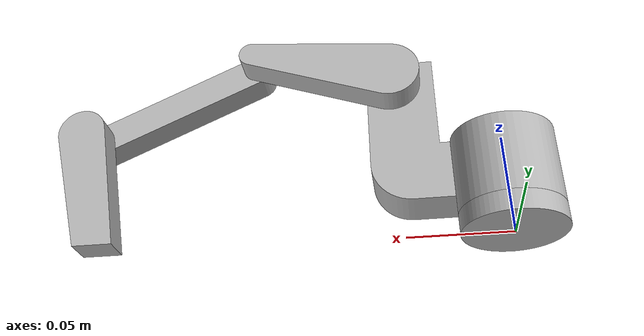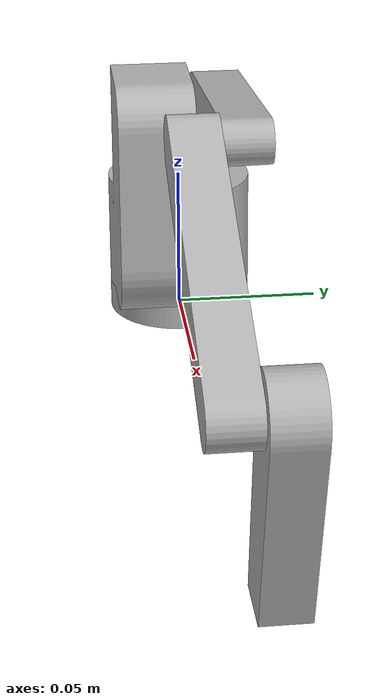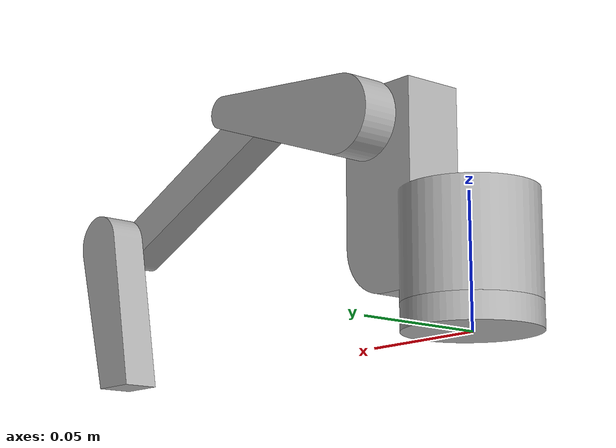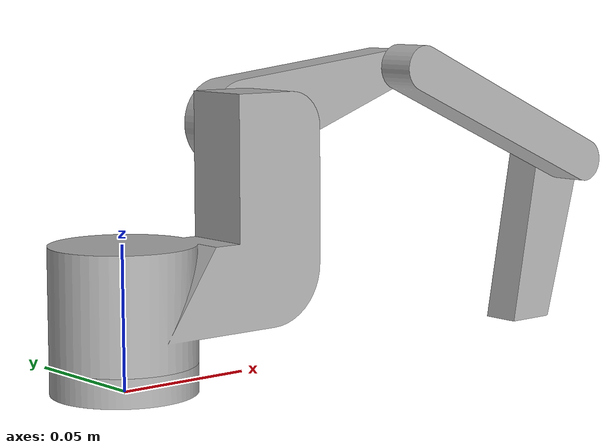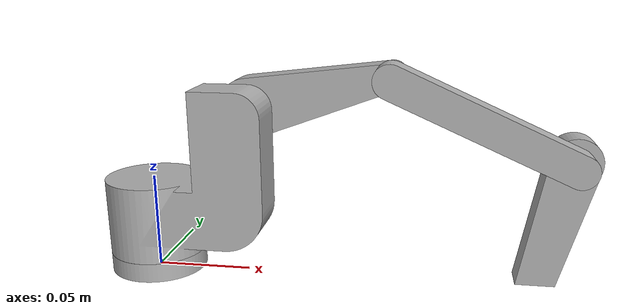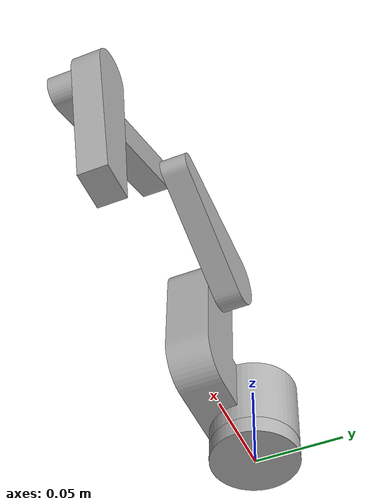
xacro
<?xml version="1.0" ?>
<robot name="gwenLimb" xmlns:xacro="http://www.ros.org/wiki/xacro">

<xacro:include filename="$(find gwenLimb_description)/urdf/materials.xacro" />
<xacro:include filename="$(find gwenLimb_description)/urdf/ros2_control.xacro" />
<xacro:include filename="$(find gwenLimb_description)/urdf/gwenLimb.trans" />
<xacro:include filename="$(find gwenLimb_description)/urdf/gwenLimb.gazebo" />

<link name="world">

</link>
<joint name="world_joint" type="fixed">
  <origin xyz="0.0 0.0 0.0" rpy="0.0 0.0 0.0"/>
  <parent link="world"/>
  <child link="base_link"/>
  <axis xyz="0.0 0.0 0.0"/>
  <limit lower="0.0" upper="0.0" effort="0.0" velocity="0.0"/>
</joint>

<link name="base_link">
  <inertial>
    <origin xyz="3.634199599635309e-18 0.0 0.005021235985580691" rpy="0 0 0"/>
    <mass value="0.1534797504318836"/>
    <inertia ixx="2.5e-05" iyy="2.5e-05" izz="4.8e-05" ixy="0.0" iyz="0.0" ixz="0.0"/>
  </inertial>
  <visual>
    <origin xyz="0 0 0" rpy="0 0 0"/>
    <geometry>
      <mesh filename="file://$(find gwenLimb_description)/meshes/base_link.stl" scale="0.001 0.001 0.001"/>
    </geometry>
    <material name="silver"/>
  </visual>
  <collision>
    <origin xyz="0 0 0" rpy="0 0 0"/>
    <geometry>
      <mesh filename="file://$(find gwenLimb_description)/meshes/base_link.stl" scale="0.001 0.001 0.001"/>
    </geometry>
  </collision>
</link>

<link name="link_1_1">
  <inertial>
    <origin xyz="0.021706913096556698 -0.0062309390414855646 0.03365814496933181" rpy="0 0 0"/>
    <mass value="1.2002468402382447"/>
    <inertia ixx="0.000797" iyy="0.001394" izz="0.00095" ixy="0.000167" iyz="0.000103" ixz="-0.000412"/>
  </inertial>
  <visual>
    <origin xyz="-0.0 -0.0 -0.01" rpy="0 0 0"/>
    <geometry>
      <mesh filename="file://$(find gwenLimb_description)/meshes/link_1_1.stl" scale="0.001 0.001 0.001"/>
    </geometry>
    <material name="silver"/>
  </visual>
  <collision>
    <origin xyz="-0.0 -0.0 -0.01" rpy="0 0 0"/>
    <geometry>
      <mesh filename="file://$(find gwenLimb_description)/meshes/link_1_1.stl" scale="0.001 0.001 0.001"/>
    </geometry>
  </collision>
</link>

<link name="link_2_1">
  <inertial>
    <origin xyz="0.02617228010459379 0.007499999999999999 0.006317447727762132" rpy="0 0 0"/>
    <mass value="0.24927046307112125"/>
    <inertia ixx="2.5e-05" iyy="0.000176" izz="0.00016" ixy="0.0" iyz="0.0" ixz="-3.5e-05"/>
  </inertial>
  <visual>
    <origin xyz="-0.0525 -0.0 -0.0875" rpy="0 0 0"/>
    <geometry>
      <mesh filename="file://$(find gwenLimb_description)/meshes/link_2_1.stl" scale="0.001 0.001 0.001"/>
    </geometry>
    <material name="silver"/>
  </visual>
  <collision>
    <origin xyz="-0.0525 -0.0 -0.0875" rpy="0 0 0"/>
    <geometry>
      <mesh filename="file://$(find gwenLimb_description)/meshes/link_2_1.stl" scale="0.001 0.001 0.001"/>
    </geometry>
  </collision>
</link>

<link name="link_3_1">
  <inertial>
    <origin xyz="0.044615796410054226 -0.007500000000000002 -0.01982914762689375" rpy="0 0 0"/>
    <mass value="0.21793986576617638"/>
    <inertia ixx="4.6e-05" iyy="0.000231" izz="0.000194" ixy="0.0" iyz="-0.0" ixz="8.2e-05"/>
  </inertial>
  <visual>
    <origin xyz="-0.125 -0.0 -0.105" rpy="0 0 0"/>
    <geometry>
      <mesh filename="file://$(find gwenLimb_description)/meshes/link_3_1.stl" scale="0.001 0.001 0.001"/>
    </geometry>
    <material name="silver"/>
  </visual>
  <collision>
    <origin xyz="-0.125 -0.0 -0.105" rpy="0 0 0"/>
    <geometry>
      <mesh filename="file://$(find gwenLimb_description)/meshes/link_3_1.stl" scale="0.001 0.001 0.001"/>
    </geometry>
  </collision>
</link>

<link name="link_4_1">
  <inertial>
    <origin xyz="-0.0060918878128145 0.007499999999999999 -0.0258589168833933" rpy="0 0 0"/>
    <mass value="0.20504652335686618"/>
    <inertia ixx="9.9e-05" iyy="0.000109" izz="1.7e-05" ixy="-0.0" iyz="-0.0" ixz="-2.1e-05"/>
  </inertial>
  <visual>
    <origin xyz="-0.215 -0.0 -0.065" rpy="0 0 0"/>
    <geometry>
      <mesh filename="file://$(find gwenLimb_description)/meshes/link_4_1.stl" scale="0.001 0.001 0.001"/>
    </geometry>
    <material name="silver"/>
  </visual>
  <collision>
    <origin xyz="-0.215 -0.0 -0.065" rpy="0 0 0"/>
    <geometry>
      <mesh filename="file://$(find gwenLimb_description)/meshes/link_4_1.stl" scale="0.001 0.001 0.001"/>
    </geometry>
  </collision>
</link>

<joint name="joint_1" type="revolute">
  <origin xyz="0.0 0.0 0.01" rpy="0 0 0"/>
  <parent link="base_link"/>
  <child link="link_1_1"/>
  <axis xyz="0.0 0.0 1.0"/>
  <limit upper="0.174533" lower="-0.174533" effort="100" velocity="100"/>
</joint>

<joint name="joint_2" type="revolute">
  <origin xyz="0.0525 0.0 0.0775" rpy="0 0 0"/>
  <parent link="link_1_1"/>
  <child link="link_2_1"/>
  <axis xyz="0.0 1.0 0.0"/>
  <limit upper="1.047198" lower="-1.047198" effort="100" velocity="100"/>
</joint>

<joint name="joint_3" type="revolute">
  <origin xyz="0.0725 0.0 0.0175" rpy="0 0 0"/>
  <parent link="link_2_1"/>
  <child link="link_3_1"/>
  <axis xyz="0.0 -1.0 0.0"/>
  <limit upper="3.403392" lower="-1.48353" effort="100" velocity="100"/>
</joint>

<joint name="joint_4" type="continuous">
  <origin xyz="0.09 0.0 -0.04" rpy="0 0 0"/>
  <parent link="link_3_1"/>
  <child link="link_4_1"/>
  <axis xyz="0.0 1.0 0.0"/>
</joint>

</robot>

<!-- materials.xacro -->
<robot name="gwenLimb" xmlns:xacro="http://www.ros.org/wiki/xacro" >

<material name="silver">
  <color rgba="0.700 0.700 0.700 1.000"/>
</material>

</robot>

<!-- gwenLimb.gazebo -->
<robot name="gwenLimb" xmlns:xacro="http://www.ros.org/wiki/xacro" >

<xacro:property name="silver" value="Gazebo/Silver" />
<xacro:property name="red" value="Gazebo/Red" />
<xacro:property name="green" value="Gazebo/Green" />
<xacro:property name="blue" value="Gazebo/Blue" />
<xacro:property name="white" value="Gazebo/White" />

<gazebo reference="base_link">
  <material>${silver}</material>
  <mu1>0.2</mu1>
  <mu2>0.2</mu2>
  <self_collide>true</self_collide>
  <gravity>true</gravity>
</gazebo>

<gazebo reference="link_1_1">
  <material>${red}</material>
  <mu1>0.2</mu1>
  <mu2>0.2</mu2>
  <self_collide>true</self_collide>
</gazebo>

<gazebo reference="link_2_1">
  <material>${green}</material>
  <mu1>0.2</mu1>
  <mu2>0.2</mu2>
  <self_collide>true</self_collide>
</gazebo>

<gazebo reference="link_3_1">
  <material>${blue}</material>
  <mu1>0.2</mu1>
  <mu2>0.2</mu2>
  <self_collide>true</self_collide>
</gazebo>

<gazebo reference="link_4_1">
  <material>${white}</material>
  <mu1>0.2</mu1>
  <mu2>0.2</mu2>
  <self_collide>true</self_collide>
</gazebo>

</robot>
